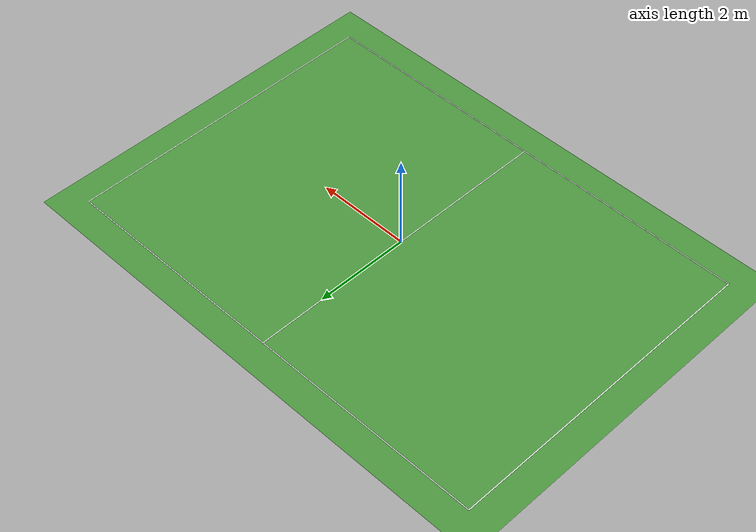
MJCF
<mujoco model="custom_arena">
    <asset>
        <texture type="skybox" builtin="gradient" rgb1="0.1 0.1 0.2" rgb2="0.6 0.8 1.0"
                 width="512" height="512"/>
        <texture name="grass_tex" type="2d" file="texture/grass.png"/>
        <material name="grass_mat" texture="grass_tex" specular="0" shininess="0" reflectance="0"  texuniform="true"/>

        <material name="line_mat" rgba="1 1 1 1" specular="0" shininess="0"/>
    </asset>
    <visual>
        <headlight ambient="0.4 0.4 0.5" diffuse="0.8 0.8 0.8" specular="0.1 0.1 0.1"/>`
        <map fogstart="3" fogend="10"/>
    </visual>

    <worldbody>
        <geom name="field" type="plane" size="5.5 4.0 0.1" material="grass_mat"/>
        <body>
            <geom name="line_side1" type="box" size="4.9 0.01 0.001" pos="0 3.4 0.001" material="line_mat"/>
            <geom name="line_side2" type="box" size="4.9 0.01 0.001" pos="0 -3.4 0.001" material="line_mat"/>
            <geom name="line_side3" type="box" size="0.01 3.4 0.001" pos="4.9 0 0.001" material="line_mat"/>
            <geom name="line_side4" type="box" size="0.01 3.4 0.001" pos="-4.9 0 0.001" material="line_mat"/>
            <geom name="line_mid" type="box" size="0.01 3.4 0.001" pos="0 0 0.001" material="line_mat"/>
        </body>
    </worldbody>
</mujoco>
